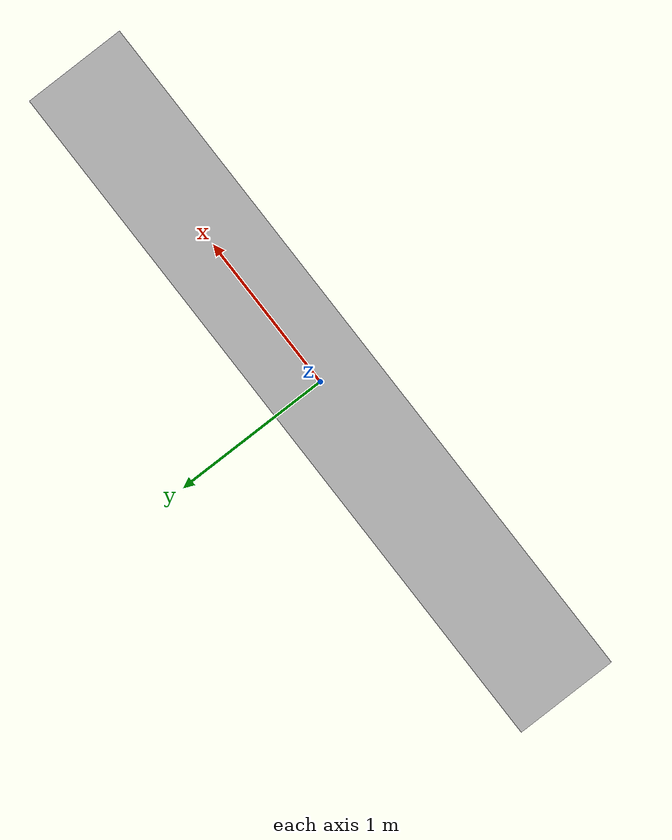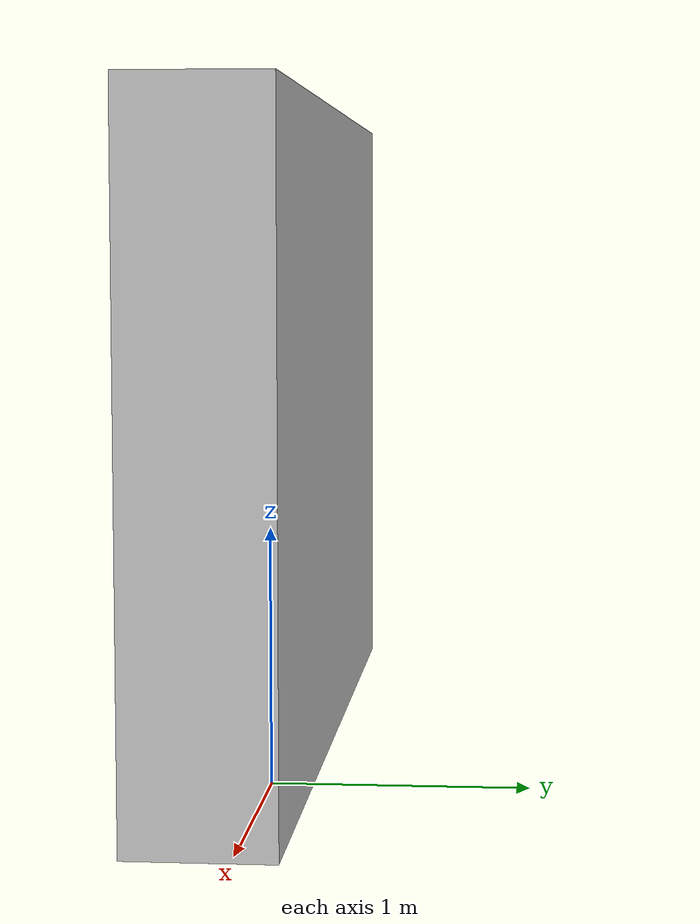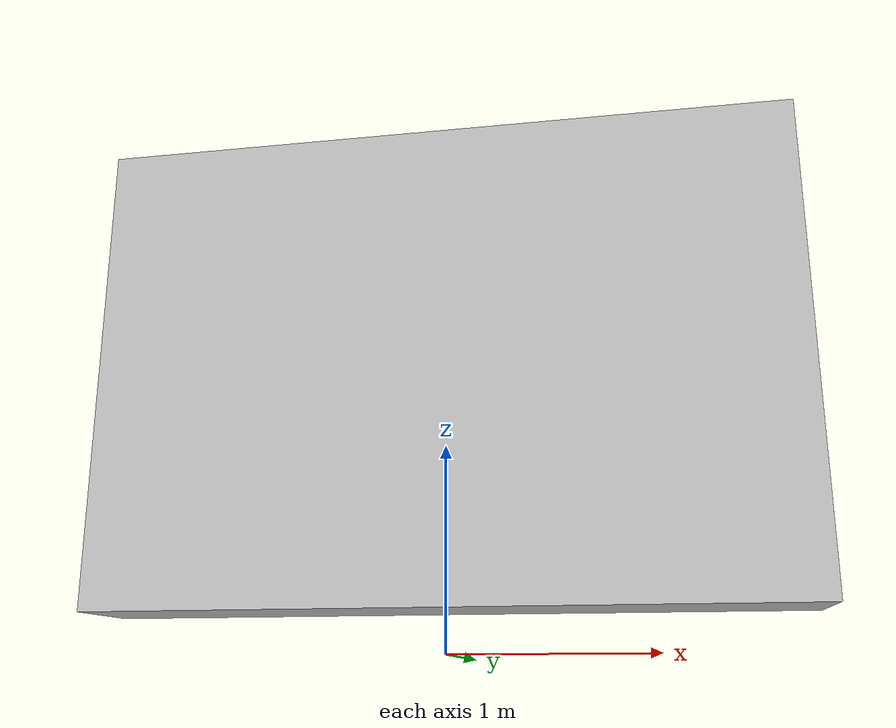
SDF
<?xml version="1.0" ?>
<sdf version="1.4">
  <model name="mywall_net10">
    <static>true</static>
    <link name="link">
      <pose>0 0 1.4 0 0 0</pose>
      <collision name="collision">
        <geometry>
          <box>
            <size>3.5 0.5 2.4</size>
          </box>
        </geometry>
      </collision>
      <visual name="visual">
        <cast_shadows>false</cast_shadows>
        <geometry>
          <box>
            <size>3.5 0.5 2.4</size>
          </box>
        </geometry>
        <material>
          <script>
            <uri>model://mywall_net10/materials/scripts</uri>
            <uri>model://mywall_net10/materials/textures</uri>
            <name>vrc/mywall_net10</name>
          </script>
        </material>
      </visual>
    </link>
  </model>
</sdf>
